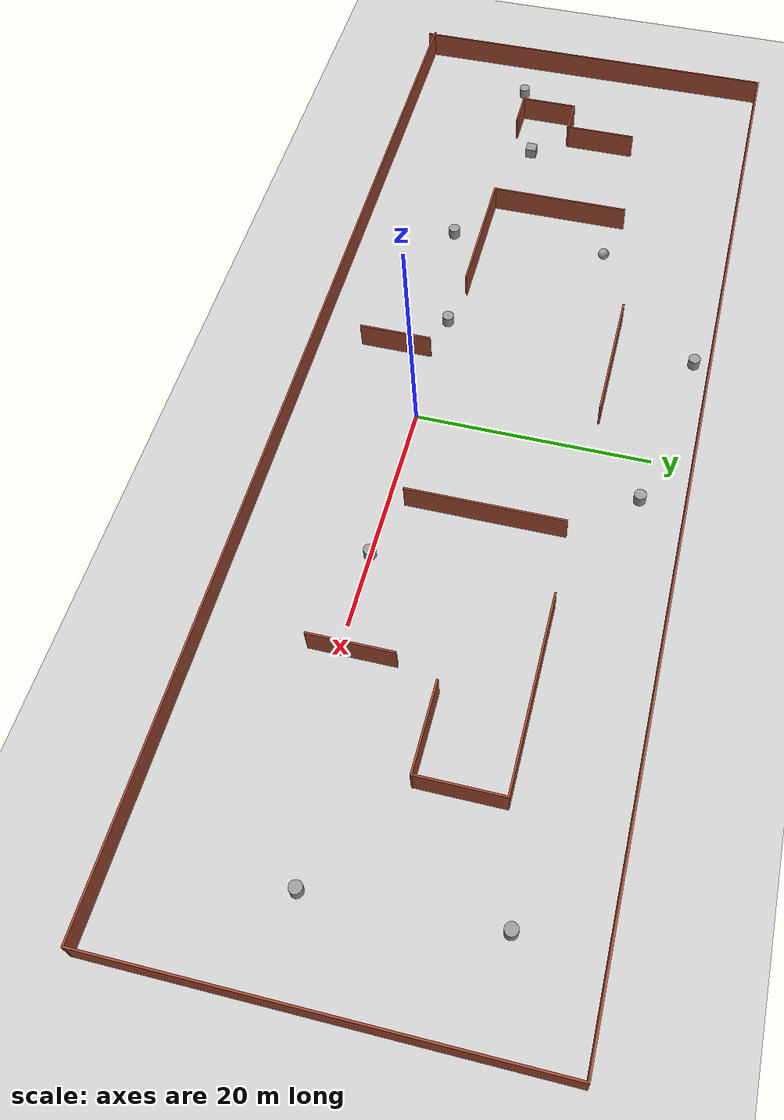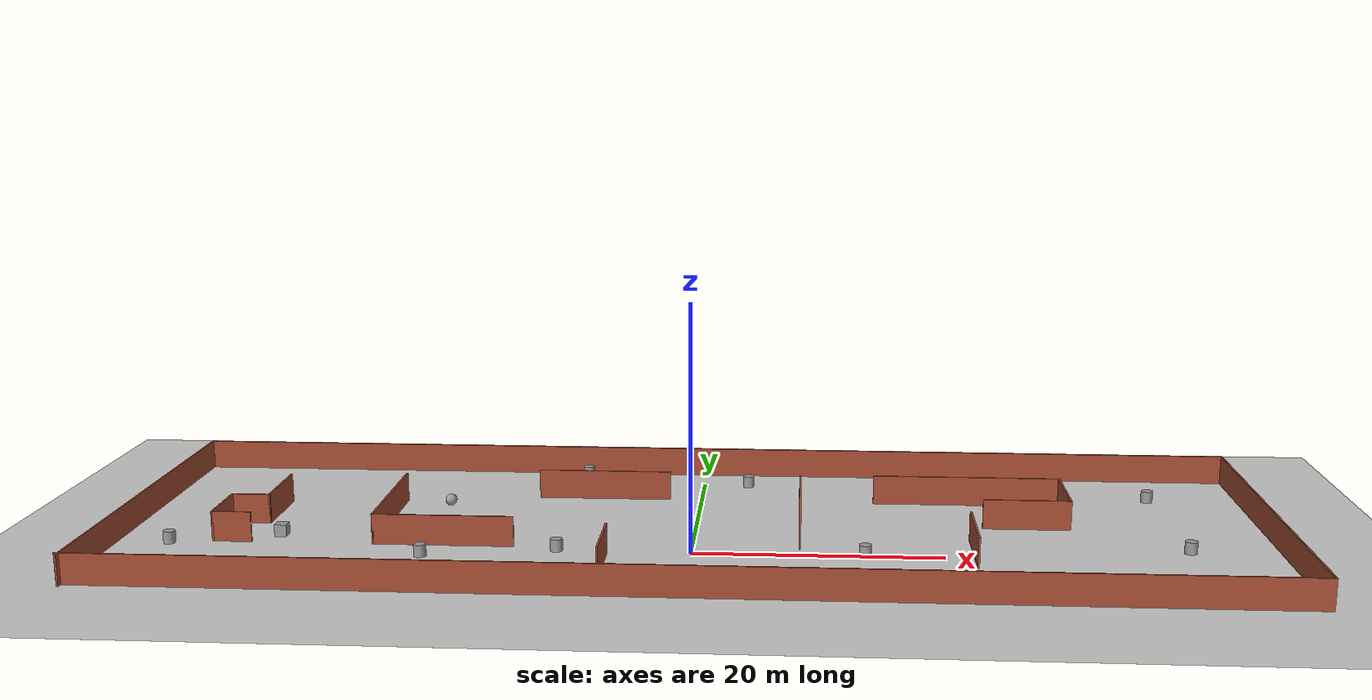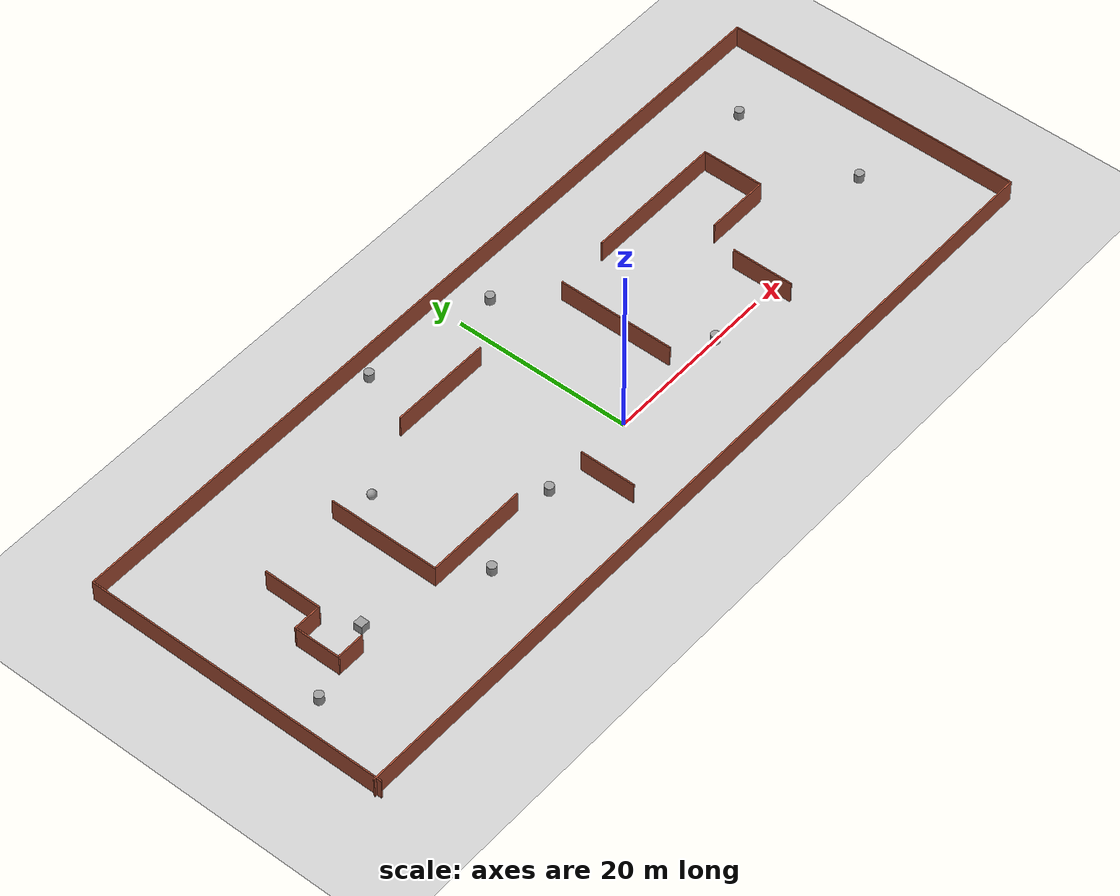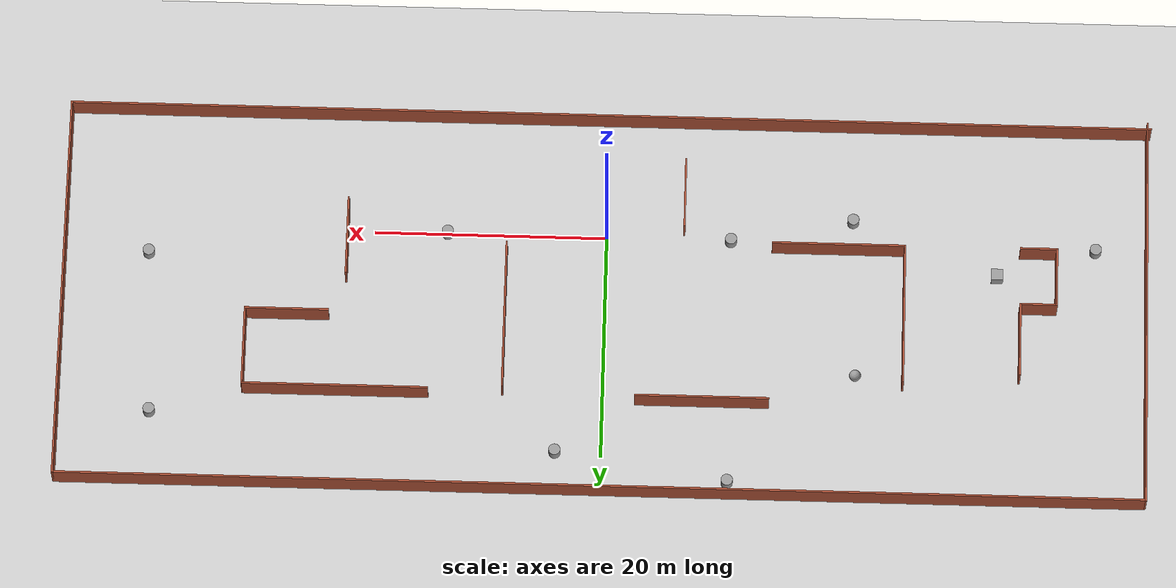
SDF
<sdf version="1.7">
 <world name="default">
  <light name="sun" type="directional">
   <pose>0 0 10 0 -0 0</pose>
   <diffuse>0.8 0.8 0.8 1</diffuse>
   <specular>0.2 0.2 0.2 1</specular>
   <attenuation>
    <range>1000</range>
    <constant>0.9</constant>
    <linear>0.01</linear>
    <quadratic>0.001</quadratic>
   </attenuation>
   <direction>-0.5 0.1 -0.9</direction>
   <spot><inner_angle>0</inner_angle><outer_angle>0</outer_angle><falloff>0</falloff></spot>
  </light>
  <model name="ground_plane">
   <static>1</static>
   <link name="link">
    <collision name="collision">
     <geometry><plane><normal>0 0 1</normal><size>100 100</size></plane></geometry>
     <surface><friction><ode><mu>100</mu><mu2>50</mu2></ode></friction></surface>
    </collision>
    <visual name="visual">
     <cast_shadows>0</cast_shadows>
     <geometry><plane><normal>0 0 1</normal><size>100 100</size></plane></geometry>
     <material>
      <script><uri>file://media/materials/scripts/gazebo.material</uri><name>Gazebo/Grey</name></script>
     </material>
    </visual>
   </link>
  </model>
  <gravity>0 0 -9.8</gravity>
  <magnetic_field>6e-06 2.3e-05 -4.2e-05</magnetic_field>
  <atmosphere type="adiabatic"/>
  <physics type="ode">
   <max_step_size>0.001</max_step_size>
   <real_time_factor>1</real_time_factor>
   <real_time_update_rate>1000</real_time_update_rate>
  </physics>
  <scene><ambient>0.4 0.4 0.4 1</ambient><background>0.7 0.7 0.7 1</background><shadows>1</shadows></scene>
  <audio><device>default</device></audio>
  <spherical_coordinates>
   <surface_model>EARTH_WGS84</surface_model>
   <latitude_deg>0</latitude_deg>
   <longitude_deg>0</longitude_deg>
   <elevation>0</elevation>
   <heading_deg>0</heading_deg>
  </spherical_coordinates>
  <model name="test_maze">
   <pose>-0.054092 6.21288 0 0 -0 0</pose>
   <link name="Wall_0">
    <collision name="Wall_0_Collision">
     <geometry><box><size>34.5 0.15 2.5</size></box></geometry>
     <pose>0 0 1.25 0 -0 0</pose>
    </collision>
    <visual name="Wall_0_Visual">
     <pose>0 0 1.25 0 -0 0</pose>
     <geometry><box><size>34.5 0.15 2.5</size></box></geometry>
     <material>
      <script><uri>file://media/materials/scripts/gazebo.material</uri><name>Gazebo/Bricks</name></script>
      <ambient>1 1 1 1</ambient>
     </material>
     <meta><layer>0</layer></meta>
    </visual>
    <pose>-46.425 -1e-06 0 0 -0 1.5708</pose>
   </link>
   <link name="Wall_1">
    <collision name="Wall_1_Collision">
     <geometry><box><size>93.25 0.15 2.5</size></box></geometry>
     <pose>0 0 1.25 0 -0 0</pose>
    </collision>
    <visual name="Wall_1_Visual">
     <pose>0 0 1.25 0 -0 0</pose>
     <geometry><box><size>93.25 0.15 2.5</size></box></geometry>
     <material>
      <script><uri>file://media/materials/scripts/gazebo.material</uri><name>Gazebo/Bricks</name></script>
      <ambient>1 1 1 1</ambient>
     </material>
     <meta><layer>0</layer></meta>
    </visual>
    <pose>0.124998 17.175 0 0 -0 0</pose>
   </link>
   <link name="Wall_10">
    <collision name="Wall_10_Collision">
     <geometry><box><size>16 0.15 2.5</size></box></geometry>
     <pose>0 0 1.25 0 -0 0</pose>
    </collision>
    <visual name="Wall_10_Visual">
     <pose>0 0 1.25 0 -0 0</pose>
     <geometry><box><size>16 0.15 2.5</size></box></geometry>
     <material>
      <script><uri>file://media/materials/scripts/gazebo.material</uri><name>Gazebo/Bricks</name></script>
      <ambient>1 1 1 1</ambient>
     </material>
     <meta><layer>0</layer></meta>
    </visual>
    <pose>22.9631 8.69953 0 0 -0 0</pose>
   </link>
   <link name="Wall_11">
    <collision name="Wall_11_Collision">
     <geometry><box><size>7 0.15 2.5</size></box></geometry>
     <pose>0 0 1.25 0 -0 0</pose>
    </collision>
    <visual name="Wall_11_Visual">
     <pose>0 0 1.25 0 -0 0</pose>
     <geometry><box><size>7 0.15 2.5</size></box></geometry>
     <material>
      <script><uri>file://media/materials/scripts/gazebo.material</uri><name>Gazebo/Bricks</name></script>
      <ambient>1 1 1 1</ambient>
     </material>
     <meta><layer>0</layer></meta>
    </visual>
    <pose>30.8881 5.27453 0 0 -0 -1.5708</pose>
   </link>
   <link name="Wall_12">
    <collision name="Wall_12_Collision">
     <geometry><box><size>7.25 0.15 2.5</size></box></geometry>
     <pose>0 0 1.25 0 -0 0</pose>
    </collision>
    <visual name="Wall_12_Visual">
     <pose>0 0 1.25 0 -0 0</pose>
     <geometry><box><size>7.25 0.15 2.5</size></box></geometry>
     <material>
      <script><uri>file://media/materials/scripts/gazebo.material</uri><name>Gazebo/Bricks</name></script>
      <ambient>1 1 1 1</ambient>
     </material>
     <meta><layer>0</layer></meta>
    </visual>
    <pose>27.3381 1.84953 0 0 -0 3.14159</pose>
   </link>
   <link name="Wall_14">
    <collision name="Wall_14_Collision">
     <geometry><box><size>6.25 0.15 2.5</size></box></geometry>
     <pose>0 0 1.25 0 -0 0</pose>
    </collision>
    <visual name="Wall_14_Visual">
     <pose>0 0 1.25 0 -0 0</pose>
     <geometry><box><size>6.25 0.15 2.5</size></box></geometry>
     <material>
      <script><uri>file://media/materials/scripts/gazebo.material</uri><name>Gazebo/Bricks</name></script>
      <ambient>1 1 1 1</ambient>
     </material>
     <meta><layer>0</layer></meta>
    </visual>
    <pose>-6.60669 -9.78412 0 0 -0 -1.5708</pose>
   </link>
   <link name="Wall_16">
    <collision name="Wall_16_Collision">
     <geometry><box><size>6.5 0.15 2.5</size></box></geometry>
     <pose>0 0 1.25 0 -0 0</pose>
    </collision>
    <visual name="Wall_16_Visual">
     <pose>0 0 1.25 0 -0 0</pose>
     <geometry><box><size>6.5 0.15 2.5</size></box></geometry>
     <material>
      <script><uri>file://media/materials/scripts/gazebo.material</uri><name>Gazebo/Bricks</name></script>
      <ambient>1 1 1 1</ambient>
     </material>
     <meta><layer>0</layer></meta>
    </visual>
    <pose>-35.5918 2.88951 0 0 -0 -1.5708</pose>
   </link>
   <link name="Wall_17">
    <collision name="Wall_17_Collision">
     <geometry><box><size>3.25 0.15 2.5</size></box></geometry>
     <pose>0 0 1.25 0 -0 0</pose>
    </collision>
    <visual name="Wall_17_Visual">
     <pose>0 0 1.25 0 -0 0</pose>
     <geometry><box><size>3.25 0.15 2.5</size></box></geometry>
     <material>
      <script><uri>file://media/materials/scripts/gazebo.material</uri><name>Gazebo/Bricks</name></script>
      <ambient>1 1 1 1</ambient>
     </material>
     <meta><layer>0</layer></meta>
    </visual>
    <pose>-37.1418 -0.285486 0 0 -0 3.14159</pose>
   </link>
   <link name="Wall_18">
    <collision name="Wall_18_Collision">
     <geometry><box><size>5.25 0.15 2.5</size></box></geometry>
     <pose>0 0 1.25 0 -0 0</pose>
    </collision>
    <visual name="Wall_18_Visual">
     <pose>0 0 1.25 0 -0 0</pose>
     <geometry><box><size>5.25 0.15 2.5</size></box></geometry>
     <material>
      <script><uri>file://media/materials/scripts/gazebo.material</uri><name>Gazebo/Bricks</name></script>
      <ambient>1 1 1 1</ambient>
     </material>
     <meta><layer>0</layer></meta>
    </visual>
    <pose>-38.6918 -2.83549 0 0 -0 -1.5708</pose>
   </link>
   <link name="Wall_19">
    <collision name="Wall_19_Collision">
     <geometry><box><size>3.25 0.15 2.5</size></box></geometry>
     <pose>0 0 1.25 0 -0 0</pose>
    </collision>
    <visual name="Wall_19_Visual">
     <pose>0 0 1.25 0 -0 0</pose>
     <geometry><box><size>3.25 0.15 2.5</size></box></geometry>
     <material>
      <script><uri>file://media/materials/scripts/gazebo.material</uri><name>Gazebo/Bricks</name></script>
      <ambient>1 1 1 1</ambient>
     </material>
     <meta><layer>0</layer></meta>
    </visual>
    <pose>-37.1418 -5.38549 0 0 -0 0</pose>
   </link>
   <link name="Wall_2">
    <collision name="Wall_2_Collision">
     <geometry><box><size>34 0.15 2.5</size></box></geometry>
     <pose>0 0 1.25 0 -0 0</pose>
    </collision>
    <visual name="Wall_2_Visual">
     <pose>0 0 1.25 0 -0 0</pose>
     <geometry><box><size>34 0.15 2.5</size></box></geometry>
     <material>
      <script><uri>file://media/materials/scripts/gazebo.material</uri><name>Gazebo/Bricks</name></script>
      <ambient>1 1 1 1</ambient>
     </material>
     <meta><layer>0</layer></meta>
    </visual>
    <pose>46.675 0.249999 0 0 -0 -1.5708</pose>
   </link>
   <link name="Wall_21">
    <collision name="Wall_21_Collision">
     <geometry><box><size>11.5 0.15 2.5</size></box></geometry>
     <pose>0 0 1.25 0 -0 0</pose>
    </collision>
    <visual name="Wall_21_Visual">
     <pose>0 0 1.25 0 -0 0</pose>
     <geometry><box><size>11.5 0.15 2.5</size></box></geometry>
     <material>
      <script><uri>file://media/materials/scripts/gazebo.material</uri><name>Gazebo/Bricks</name></script>
      <ambient>1 1 1 1</ambient>
     </material>
     <meta><layer>0</layer></meta>
    </visual>
    <pose>-8.4603 8.88774 0 0 -0 0</pose>
   </link>
   <link name="Wall_23">
    <collision name="Wall_23_Collision">
     <geometry><box><size>7 0.15 2.5</size></box></geometry>
     <pose>0 0 1.25 0 -0 0</pose>
    </collision>
    <visual name="Wall_23_Visual">
     <pose>0 0 1.25 0 -0 0</pose>
     <geometry><box><size>7 0.15 2.5</size></box></geometry>
     <material>
      <script><uri>file://media/materials/scripts/gazebo.material</uri><name>Gazebo/Bricks</name></script>
      <ambient>1 1 1 1</ambient>
     </material>
     <meta><layer>0</layer></meta>
    </visual>
    <pose>22.3785 -5.07731 0 0 -0 -1.5708</pose>
   </link>
   <link name="Wall_3">
    <collision name="Wall_3_Collision">
     <geometry><box><size>93.5 0.15 2.5</size></box></geometry>
     <pose>0 0 1.25 0 -0 0</pose>
    </collision>
    <visual name="Wall_3_Visual">
     <pose>0 0 1.25 0 -0 0</pose>
     <geometry><box><size>93.5 0.15 2.5</size></box></geometry>
     <material>
      <script><uri>file://media/materials/scripts/gazebo.material</uri><name>Gazebo/Bricks</name></script>
      <ambient>1 1 1 1</ambient>
     </material>
     <meta><layer>0</layer></meta>
    </visual>
    <pose>-2e-06 -16.675 0 0 -0 3.14159</pose>
   </link>
   <link name="Wall_5">
    <collision name="Wall_5_Collision">
     <geometry><box><size>12.5 0.15 2.5</size></box></geometry>
     <pose>0 0 1.25 0 -0 0</pose>
    </collision>
    <visual name="Wall_5_Visual">
     <pose>0 0 1.25 0 -0 0</pose>
     <geometry><box><size>12.5 0.15 2.5</size></box></geometry>
     <material>
      <script><uri>file://media/materials/scripts/gazebo.material</uri><name>Gazebo/Bricks</name></script>
      <ambient>1 1 1 1</ambient>
     </material>
     <meta><layer>0</layer></meta>
    </visual>
    <pose>-25.6164 0.83059 0 0 -0 -1.5708</pose>
   </link>
   <link name="Wall_6">
    <collision name="Wall_6_Collision">
     <geometry><box><size>11.5 0.15 2.5</size></box></geometry>
     <pose>0 0 1.25 0 -0 0</pose>
    </collision>
    <visual name="Wall_6_Visual">
     <pose>0 0 1.25 0 -0 0</pose>
     <geometry><box><size>11.5 0.15 2.5</size></box></geometry>
     <material>
      <script><uri>file://media/materials/scripts/gazebo.material</uri><name>Gazebo/Bricks</name></script>
      <ambient>1 1 1 1</ambient>
     </material>
     <meta><layer>0</layer></meta>
    </visual>
    <pose>-19.9414 -5.34441 0 0 -0 0</pose>
   </link>
   <link name="Wall_8">
    <collision name="Wall_8_Collision">
     <geometry><box><size>13.25 0.15 2.5</size></box></geometry>
     <pose>0 0 1.25 0 -0 0</pose>
    </collision>
    <visual name="Wall_8_Visual">
     <pose>0 0 1.25 0 -0 0</pose>
     <geometry><box><size>13.25 0.15 2.5</size></box></geometry>
     <material>
      <script><uri>file://media/materials/scripts/gazebo.material</uri><name>Gazebo/Bricks</name></script>
      <ambient>1 1 1 1</ambient>
     </material>
     <meta><layer>0</layer></meta>
    </visual>
    <pose>8.63874 1.7731 0 0 -0 -1.5708</pose>
   </link>
   <static>1</static>
  </model>
  <model name="unit_cylinder">
   <pose>-10.6979 0.055995 0.499993 -3e-06 3e-06 0</pose>
   <link name="link">
    <inertial>
     <mass>1</mass>
     <inertia><ixx>0.145833</ixx><ixy>0</ixy><ixz>0</ixz><iyy>0.145833</iyy><iyz>0</iyz><izz>0.125</izz></inertia>
    </inertial>
    <collision name="collision">
     <geometry><cylinder><radius>0.5</radius><length>1</length></cylinder></geometry>
    </collision>
    <visual name="visual">
     <geometry><cylinder><radius>0.5</radius><length>1</length></cylinder></geometry>
     <material>
      <script><name>Gazebo/Grey</name><uri>file://media/materials/scripts/gazebo.material</uri></script>
     </material>
    </visual>
   </link>
  </model>
  <model name="unit_cylinder_0">
   <pose>3.95216 19.6934 0.499998 3e-06 -3e-06 0</pose>
   <link name="link">
    <inertial>
     <mass>1</mass>
     <inertia><ixx>0.145833</ixx><ixy>0</ixy><ixz>0</ixz><iyy>0.145833</iyy><iyz>0</iyz><izz>0.125</izz></inertia>
    </inertial>
    <collision name="collision">
     <geometry><cylinder><radius>0.5</radius><length>1</length></cylinder></geometry>
    </collision>
    <visual name="visual">
     <geometry><cylinder><radius>0.5</radius><length>1</length></cylinder></geometry>
     <material>
      <script><name>Gazebo/Grey</name><uri>file://media/materials/scripts/gazebo.material</uri></script>
     </material>
    </visual>
   </link>
  </model>
  <model name="unit_cylinder_1">
   <pose>13.7341 -0.027412 0.499992 -3e-06 3e-06 0</pose>
   <link name="link">
    <inertial>
     <mass>1</mass>
     <inertia><ixx>0.145833</ixx><ixy>0</ixy><ixz>0</ixz><iyy>0.145833</iyy><iyz>0</iyz><izz>0.125</izz></inertia>
    </inertial>
    <collision name="collision">
     <geometry><cylinder><radius>0.5</radius><length>1</length></cylinder></geometry>
    </collision>
    <visual name="visual">
     <geometry><cylinder><radius>0.5</radius><length>1</length></cylinder></geometry>
     <material>
      <script><name>Gazebo/Grey</name><uri>file://media/materials/scripts/gazebo.material</uri></script>
     </material>
    </visual>
   </link>
  </model>
  <model name="unit_cylinder_2">
   <pose>38.7736 16.9 0.499998 3e-06 -3e-06 0</pose>
   <link name="link">
    <inertial>
     <mass>1</mass>
     <inertia><ixx>0.145833</ixx><ixy>0</ixy><ixz>0</ixz><iyy>0.145833</iyy><iyz>0</iyz><izz>0.125</izz></inertia>
    </inertial>
    <collision name="collision">
     <geometry><cylinder><radius>0.5</radius><length>1</length></cylinder></geometry>
    </collision>
    <visual name="visual">
     <geometry><cylinder><radius>0.5</radius><length>1</length></cylinder></geometry>
     <material>
      <script><name>Gazebo/Grey</name><uri>file://media/materials/scripts/gazebo.material</uri></script>
     </material>
    </visual>
   </link>
  </model>
  <model name="unit_cylinder_3">
   <pose>39.4323 2.42064 0.499992 -3e-06 3e-06 0</pose>
   <link name="link">
    <inertial>
     <mass>1</mass>
     <inertia><ixx>0.145833</ixx><ixy>0</ixy><ixz>0</ixz><iyy>0.145833</iyy><iyz>0</iyz><izz>0.125</izz></inertia>
    </inertial>
    <collision name="collision">
     <geometry><cylinder><radius>0.5</radius><length>1</length></cylinder></geometry>
    </collision>
    <visual name="visual">
     <geometry><cylinder><radius>0.5</radius><length>1</length></cylinder></geometry>
     <material>
      <script><name>Gazebo/Grey</name><uri>file://media/materials/scripts/gazebo.material</uri></script>
     </material>
    </visual>
   </link>
  </model>
  <model name="unit_cylinder_4">
   <pose>-42.1317 0.195217 0.499998 3e-06 -3e-06 0</pose>
   <link name="link">
    <inertial>
     <mass>1</mass>
     <inertia><ixx>0.145833</ixx><ixy>0</ixy><ixz>0</ixz><iyy>0.145833</iyy><iyz>0</iyz><izz>0.125</izz></inertia>
    </inertial>
    <collision name="collision">
     <geometry><cylinder><radius>0.5</radius><length>1</length></cylinder></geometry>
    </collision>
    <visual name="visual">
     <geometry><cylinder><radius>0.5</radius><length>1</length></cylinder></geometry>
     <material>
      <script><name>Gazebo/Grey</name><uri>file://media/materials/scripts/gazebo.material</uri></script>
     </material>
    </visual>
   </link>
  </model>
  <model name="unit_sphere">
   <pose>-21.5991 12.1418 0.5 0 -0 0</pose>
   <link name="link">
    <inertial>
     <mass>1</mass>
     <inertia><ixx>0.1</ixx><ixy>0</ixy><ixz>0</ixz><iyy>0.1</iyy><iyz>0</iyz><izz>0.1</izz></inertia>
    </inertial>
    <collision name="collision"><geometry><sphere><radius>0.5</radius></sphere></geometry></collision>
    <visual name="visual">
     <geometry><sphere><radius>0.5</radius></sphere></geometry>
     <material>
      <script><name>Gazebo/Grey</name><uri>file://media/materials/scripts/gazebo.material</uri></script>
     </material>
    </visual>
   </link>
  </model>
  <model name="unit_box">
   <pose>-33.6677 2.71856 0.499995 0 1e-05 0</pose>
   <link name="link">
    <inertial>
     <mass>1</mass>
     <inertia>
      <ixx>0.166667</ixx>
      <ixy>0</ixy>
      <ixz>0</ixz>
      <iyy>0.166667</iyy>
      <iyz>0</iyz>
      <izz>0.166667</izz>
     </inertia>
    </inertial>
    <collision name="collision"><geometry><box><size>1 1 1</size></box></geometry></collision>
    <visual name="visual">
     <geometry><box><size>1 1 1</size></box></geometry>
     <material>
      <script><name>Gazebo/Grey</name><uri>file://media/materials/scripts/gazebo.material</uri></script>
     </material>
    </visual>
   </link>
  </model>
  <model name="unit_cylinder_5">
   <pose>-21.215 -2.00542 0.499998 3e-06 -4e-06 0</pose>
   <link name="link">
    <inertial>
     <mass>1</mass>
     <inertia><ixx>0.145833</ixx><ixy>0</ixy><ixz>0</ixz><iyy>0.145833</iyy><iyz>0</iyz><izz>0.125</izz></inertia>
    </inertial>
    <collision name="collision">
     <geometry><cylinder><radius>0.5</radius><length>1</length></cylinder></geometry>
    </collision>
    <visual name="visual">
     <geometry><cylinder><radius>0.5</radius><length>1</length></cylinder></geometry>
     <material>
      <script><name>Gazebo/Grey</name><uri>file://media/materials/scripts/gazebo.material</uri></script>
     </material>
    </visual>
   </link>
  </model>
  <model name="unit_cylinder_6">
   <pose>-10.8171 22.0294 0.499992 -3e-06 -4e-06 -0</pose>
   <link name="link">
    <inertial>
     <mass>1</mass>
     <inertia><ixx>0.145833</ixx><ixy>0</ixy><ixz>0</ixz><iyy>0.145833</iyy><iyz>0</iyz><izz>0.125</izz></inertia>
    </inertial>
    <collision name="collision">
     <geometry><cylinder><radius>0.5</radius><length>1</length></cylinder></geometry>
    </collision>
    <visual name="visual">
     <geometry><cylinder><radius>0.5</radius><length>1</length></cylinder></geometry>
     <material>
      <script><name>Gazebo/Grey</name><uri>file://media/materials/scripts/gazebo.material</uri></script>
     </material>
    </visual>
   </link>
  </model>
 </world>
</sdf>
